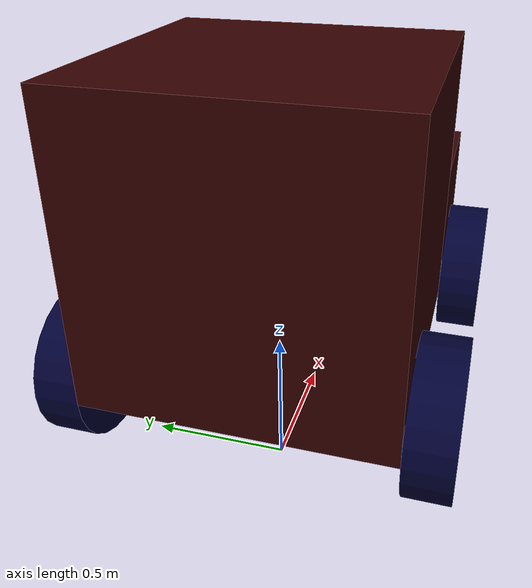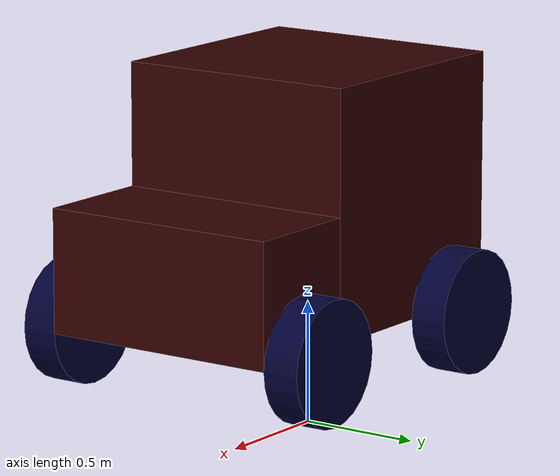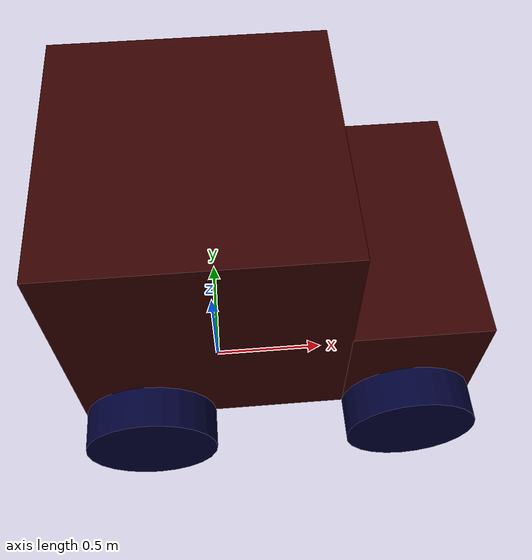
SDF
<?xml version='1.0'?>
<sdf version="1.6">
  <model name="car">
    <pose>0 0 1 0 0 0</pose>
    <static>false</static>

    <link name="main">

      <pose>0 0 0 0 0 0</pose>

      <inertial>
        <mass>1.0</mass>
        <inertia>
          <ixx>0.03</ixx>
          <ixy>0.0</ixy>
          <ixz>0.0</ixz>
          <iyy>0.03</iyy>
          <iyz>0.0</iyz>
          <izz>0.03</izz>
        </inertia>
      </inertial>

      <collision name="collision">
        <geometry>
          <box>
            <size>1 1 1</size>
          </box>
        </geometry>
      </collision>

      <visual name="visual">

        <geometry>
          <box>
            <size>1 1 1</size>
          </box>
        </geometry>

        <material>
          <ambient>0.2 0 0 1</ambient>
        </material>
      </visual>

    </link>

    <link name="front">

      <pose>0.75 0 -0.25 0 0 0</pose>

      <inertial>
        <mass>.25</mass>
        <inertia>
          <ixx>0.015</ixx>
          <ixy>0.0</ixy>
          <ixz>0.0</ixz>
          <iyy>0.015</iyy>
          <iyz>0.0</iyz>
          <izz>0.015</izz>
        </inertia>
      </inertial>

      <collision name="collision">
        <geometry>
          <box>
            <size>0.5 1 0.5</size>
          </box>
        </geometry>
      </collision>

      <visual name="visual">

        <geometry>
          <box>
            <size>0.5 1 0.5</size>
          </box>
        </geometry>

        <material>
          <ambient>0.2 0 0 1</ambient>
        </material>
      </visual>

    </link>

    <link name="frwheel">

      <pose>0.75 -0.575 -0.5 -1.570791 0 0</pose>

      <inertial>
        <mass>.2</mass>
        <inertia>
          <ixx>0.01</ixx>
          <ixy>0.0</ixy>
          <ixz>0.0</ixz>
          <iyy>0.01</iyy>
          <iyz>0.0</iyz>
          <izz>0.01</izz>
        </inertia>
      </inertial>

      <collision name="collision">
        <geometry>
          <cylinder>
            <radius>0.25</radius>
            <length>0.15</length>
          </cylinder>
        </geometry>
      </collision>

      <visual name="visual">

        <geometry>
          <cylinder>
            <radius>0.25</radius>
            <length>0.15</length>
          </cylinder>
        </geometry>

        <material>
          <ambient>0 0 0.2 1</ambient>
        </material>
      </visual>

    </link>

    <link name="brwheel">

      <pose>-0.25 -0.575 -0.5 -1.570791 0 0</pose>

      <inertial>
        <mass>.2</mass>
        <inertia>
          <ixx>0.01</ixx>
          <ixy>0.0</ixy>
          <ixz>0.0</ixz>
          <iyy>0.01</iyy>
          <iyz>0.0</iyz>
          <izz>0.01</izz>
        </inertia>
      </inertial>

      <collision name="collision">
        <geometry>
          <cylinder>
            <radius>0.25</radius>
            <length>0.15</length>
          </cylinder>
        </geometry>
      </collision>

      <visual name="visual">

        <geometry>
          <cylinder>
            <radius>0.25</radius>
            <length>0.15</length>
          </cylinder>
        </geometry>

        <material>
          <ambient>0 0 0.2 1</ambient>
        </material>
      </visual>

    </link>

    <link name="flwheel">

      <pose>0.75 0.575 -0.5 1.570791 0 0</pose>

      <inertial>
        <mass>.2</mass>
        <inertia>
          <ixx>0.01</ixx>
          <ixy>0.0</ixy>
          <ixz>0.0</ixz>
          <iyy>0.01</iyy>
          <iyz>0.0</iyz>
          <izz>0.01</izz>
        </inertia>
      </inertial>

      <collision name="collision">
        <geometry>
          <cylinder>
            <radius>0.25</radius>
            <length>0.15</length>
          </cylinder>
        </geometry>
      </collision>

      <visual name="visual">

        <geometry>
          <cylinder>
            <radius>0.25</radius>
            <length>0.15</length>
          </cylinder>
        </geometry>

        <material>
          <ambient>0 0 0.2 1</ambient>
        </material>
      </visual>

    </link>

    <link name="blwheel">

      <pose>-0.25 0.575 -0.5 1.570791 0 0</pose>

      <inertial>
        <mass>.2</mass>
        <inertia>
          <ixx>0.01</ixx>
          <ixy>0.0</ixy>
          <ixz>0.0</ixz>
          <iyy>0.01</iyy>
          <iyz>0.0</iyz>
          <izz>0.01</izz>
        </inertia>
      </inertial>

      <collision name="collision">
        <geometry>
          <cylinder>
            <radius>0.25</radius>
            <length>0.15</length>
          </cylinder>
        </geometry>
      </collision>

      <visual name="visual">

        <geometry>
          <cylinder>
            <radius>0.25</radius>
            <length>0.15</length>
          </cylinder>
        </geometry>

        <material>
          <ambient>0 0 0.2 1</ambient>
        </material>
      </visual>

    </link>

    <joint name="joint_2_boxes" type="fixed">
      <parent>main</parent>
      <child>front</child>
    </joint>

    <joint name="joint_frwheel" type="revolute">
      <pose>0 0 0.075 0 0 0</pose>
      <parent>front</parent>
      <child>frwheel</child>
      <axis>
        <xyz>0 0 1</xyz>
      </axis>
    </joint>

    <joint name="joint_flwheel" type="revolute">
      <pose>0 0 0.075 0 0 0</pose>
      <parent>front</parent>
      <child>flwheel</child>
      <axis>
        <xyz>0 0 1</xyz>
      </axis>
    </joint>

    <joint name="joint_brwheel" type="revolute">
      <pose>0 0 0.075 0 0 0</pose>
      <parent>main</parent>
      <child>brwheel</child>
      <axis>
        <xyz>0 0 1</xyz>
      </axis>
    </joint>

    <joint name="joint_blwheel" type="revolute">
      <pose>0 0 0.075 0 0 0</pose>
      <parent>main</parent>
      <child>blwheel</child>
      <axis>
        <xyz>0 0 1</xyz>
      </axis>
    </joint>

    <plugin name="car_control" filename="libcar_control_plugin.so"/>

  </model>
</sdf>
